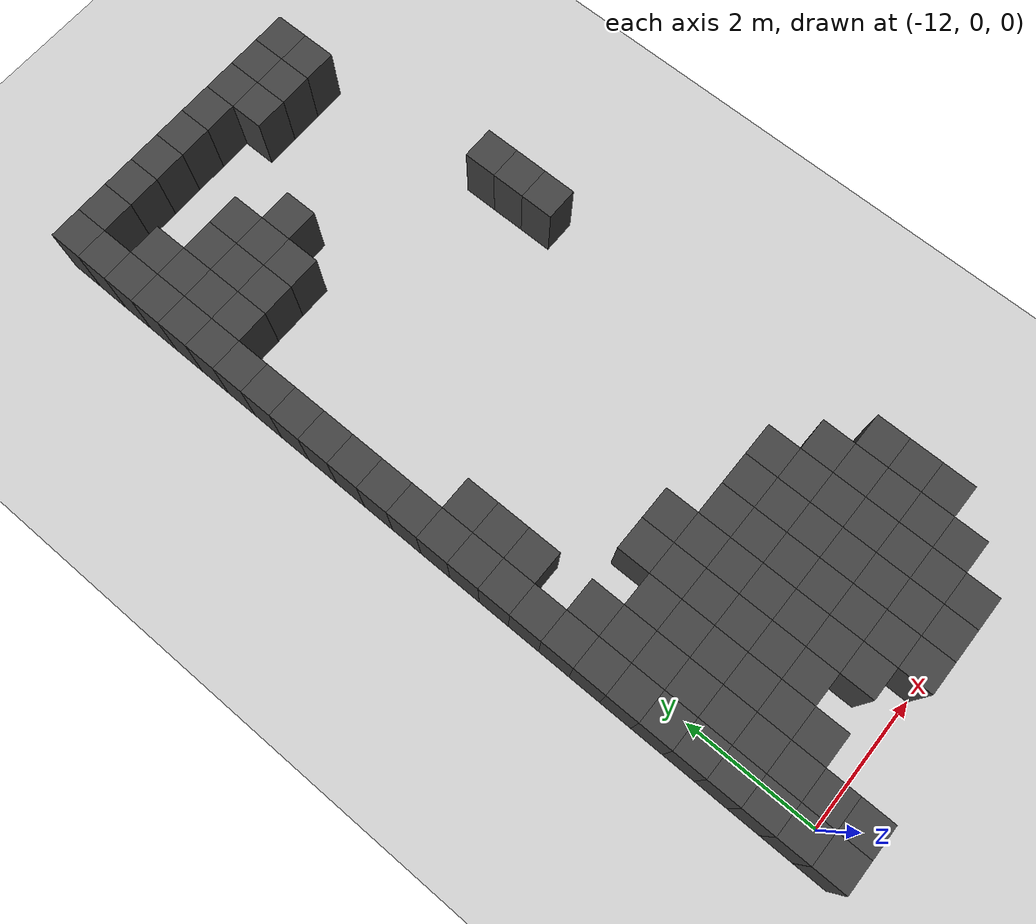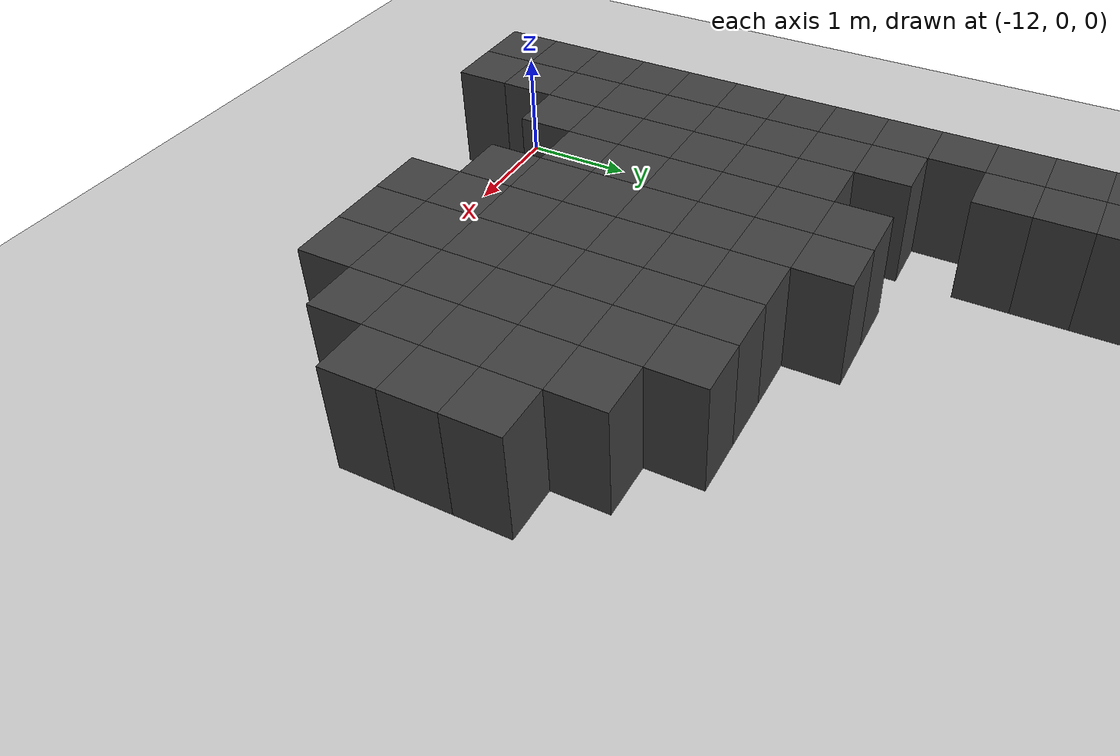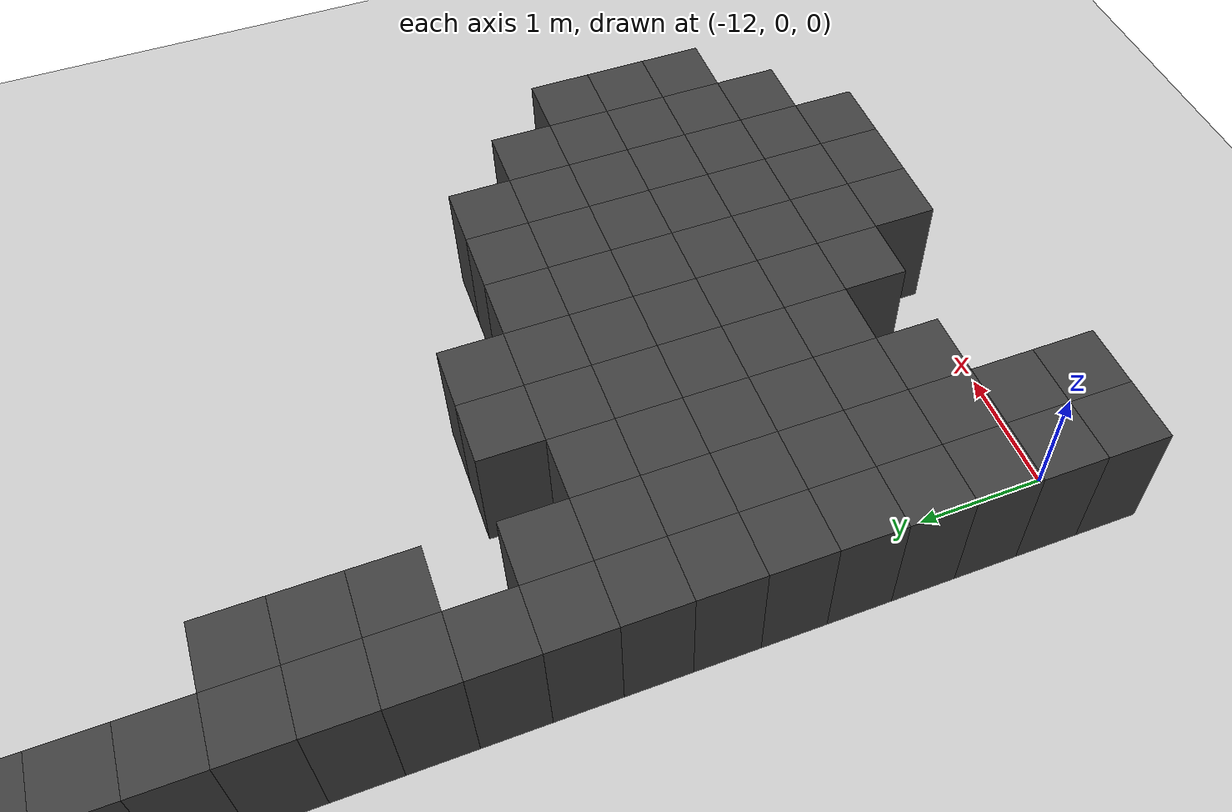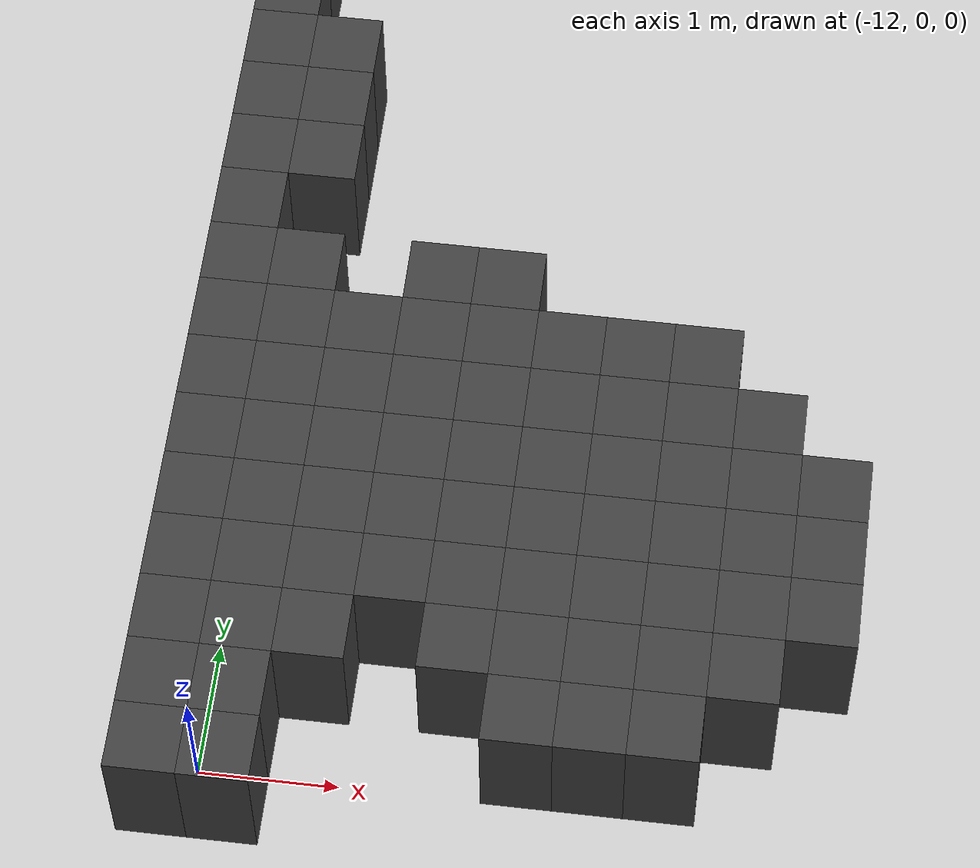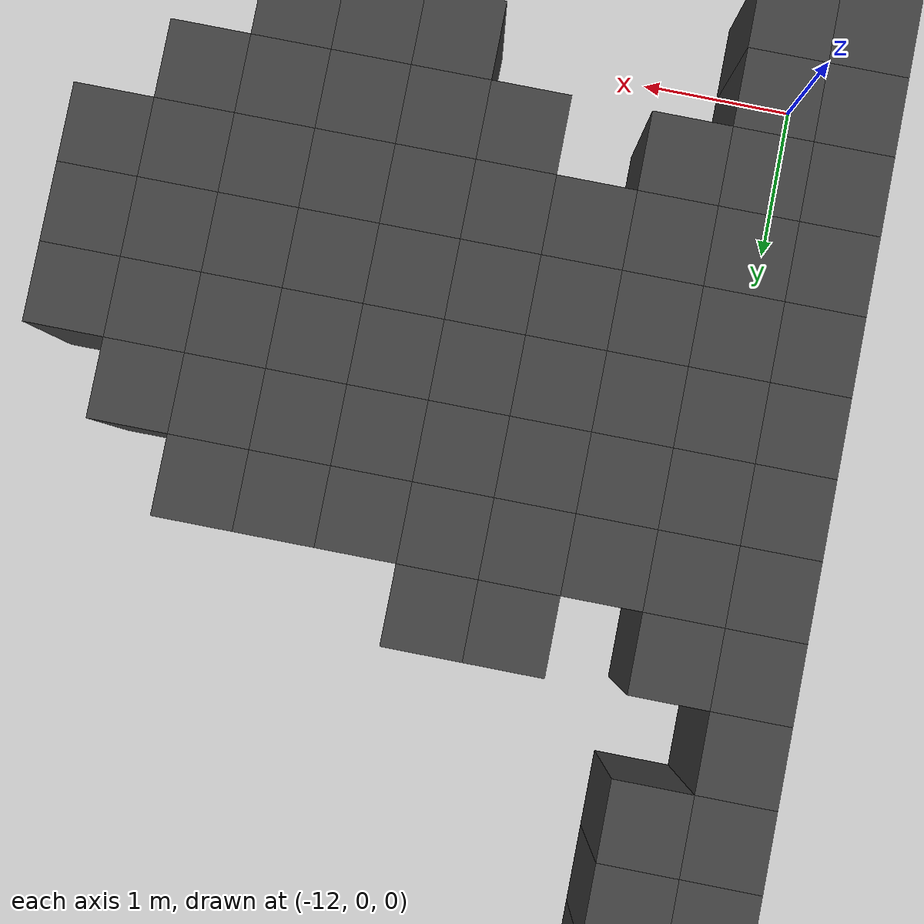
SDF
<sdf version="1.7">
 <world name="map_9405">
  <model name="ground_plane">
   <static>true</static>
   <link name="link">
    <collision name="collision">
     <geometry><plane><normal>0 0 1</normal><size>200 200</size></plane></geometry>
    </collision>
    <visual name="visual">
     <geometry><plane><normal>0 0 1</normal><size>200 200</size></plane></geometry>
     <material><ambient>0.8 0.8 0.8 1</ambient><diffuse>0.8 0.8 0.8 1</diffuse></material>
    </visual>
   </link>
  </model>
  <model name="maze_environment">
   <static>true</static>
   <link name="wall_0">
    <pose>-12.250 12.250 0.500 0 0 0</pose>
    <collision name="col"><geometry><box><size>0.5 0.5 1.0</size></box></geometry></collision>
    <visual name="vis">
     <geometry><box><size>0.5 0.5 1.0</size></box></geometry>
     <material><ambient>0.15 0.15 0.15 1</ambient><diffuse>0.25 0.25 0.25 1</diffuse></material>
    </visual>
   </link>
   <link name="wall_1">
    <pose>-11.750 12.250 0.500 0 0 0</pose>
    <collision name="col"><geometry><box><size>0.5 0.5 1.0</size></box></geometry></collision>
    <visual name="vis">
     <geometry><box><size>0.5 0.5 1.0</size></box></geometry>
     <material><ambient>0.15 0.15 0.15 1</ambient><diffuse>0.25 0.25 0.25 1</diffuse></material>
    </visual>
   </link>
   <link name="wall_2">
    <pose>-11.250 12.250 0.500 0 0 0</pose>
    <collision name="col"><geometry><box><size>0.5 0.5 1.0</size></box></geometry></collision>
    <visual name="vis">
     <geometry><box><size>0.5 0.5 1.0</size></box></geometry>
     <material><ambient>0.15 0.15 0.15 1</ambient><diffuse>0.25 0.25 0.25 1</diffuse></material>
    </visual>
   </link>
   <link name="wall_3">
    <pose>-10.750 12.250 0.500 0 0 0</pose>
    <collision name="col"><geometry><box><size>0.5 0.5 1.0</size></box></geometry></collision>
    <visual name="vis">
     <geometry><box><size>0.5 0.5 1.0</size></box></geometry>
     <material><ambient>0.15 0.15 0.15 1</ambient><diffuse>0.25 0.25 0.25 1</diffuse></material>
    </visual>
   </link>
   <link name="wall_4">
    <pose>-10.250 12.250 0.500 0 0 0</pose>
    <collision name="col"><geometry><box><size>0.5 0.5 1.0</size></box></geometry></collision>
    <visual name="vis">
     <geometry><box><size>0.5 0.5 1.0</size></box></geometry>
     <material><ambient>0.15 0.15 0.15 1</ambient><diffuse>0.25 0.25 0.25 1</diffuse></material>
    </visual>
   </link>
   <link name="wall_5">
    <pose>-9.750 12.250 0.500 0 0 0</pose>
    <collision name="col"><geometry><box><size>0.5 0.5 1.0</size></box></geometry></collision>
    <visual name="vis">
     <geometry><box><size>0.5 0.5 1.0</size></box></geometry>
     <material><ambient>0.15 0.15 0.15 1</ambient><diffuse>0.25 0.25 0.25 1</diffuse></material>
    </visual>
   </link>
   <link name="wall_6">
    <pose>-9.250 12.250 0.500 0 0 0</pose>
    <collision name="col"><geometry><box><size>0.5 0.5 1.0</size></box></geometry></collision>
    <visual name="vis">
     <geometry><box><size>0.5 0.5 1.0</size></box></geometry>
     <material><ambient>0.15 0.15 0.15 1</ambient><diffuse>0.25 0.25 0.25 1</diffuse></material>
    </visual>
   </link>
   <link name="wall_7">
    <pose>-8.750 12.250 0.500 0 0 0</pose>
    <collision name="col"><geometry><box><size>0.5 0.5 1.0</size></box></geometry></collision>
    <visual name="vis">
     <geometry><box><size>0.5 0.5 1.0</size></box></geometry>
     <material><ambient>0.15 0.15 0.15 1</ambient><diffuse>0.25 0.25 0.25 1</diffuse></material>
    </visual>
   </link>
   <link name="wall_8">
    <pose>-8.250 12.250 0.500 0 0 0</pose>
    <collision name="col"><geometry><box><size>0.5 0.5 1.0</size></box></geometry></collision>
    <visual name="vis">
     <geometry><box><size>0.5 0.5 1.0</size></box></geometry>
     <material><ambient>0.15 0.15 0.15 1</ambient><diffuse>0.25 0.25 0.25 1</diffuse></material>
    </visual>
   </link>
   <link name="wall_50">
    <pose>-12.250 11.750 0.500 0 0 0</pose>
    <collision name="col"><geometry><box><size>0.5 0.5 1.0</size></box></geometry></collision>
    <visual name="vis">
     <geometry><box><size>0.5 0.5 1.0</size></box></geometry>
     <material><ambient>0.15 0.15 0.15 1</ambient><diffuse>0.25 0.25 0.25 1</diffuse></material>
    </visual>
   </link>
   <link name="wall_51">
    <pose>-9.250 11.750 0.500 0 0 0</pose>
    <collision name="col"><geometry><box><size>0.5 0.5 1.0</size></box></geometry></collision>
    <visual name="vis">
     <geometry><box><size>0.5 0.5 1.0</size></box></geometry>
     <material><ambient>0.15 0.15 0.15 1</ambient><diffuse>0.25 0.25 0.25 1</diffuse></material>
    </visual>
   </link>
   <link name="wall_52">
    <pose>-8.750 11.750 0.500 0 0 0</pose>
    <collision name="col"><geometry><box><size>0.5 0.5 1.0</size></box></geometry></collision>
    <visual name="vis">
     <geometry><box><size>0.5 0.5 1.0</size></box></geometry>
     <material><ambient>0.15 0.15 0.15 1</ambient><diffuse>0.25 0.25 0.25 1</diffuse></material>
    </visual>
   </link>
   <link name="wall_53">
    <pose>-8.250 11.750 0.500 0 0 0</pose>
    <collision name="col"><geometry><box><size>0.5 0.5 1.0</size></box></geometry></collision>
    <visual name="vis">
     <geometry><box><size>0.5 0.5 1.0</size></box></geometry>
     <material><ambient>0.15 0.15 0.15 1</ambient><diffuse>0.25 0.25 0.25 1</diffuse></material>
    </visual>
   </link>
   <link name="wall_76">
    <pose>-12.250 11.250 0.500 0 0 0</pose>
    <collision name="col"><geometry><box><size>0.5 0.5 1.0</size></box></geometry></collision>
    <visual name="vis">
     <geometry><box><size>0.5 0.5 1.0</size></box></geometry>
     <material><ambient>0.15 0.15 0.15 1</ambient><diffuse>0.25 0.25 0.25 1</diffuse></material>
    </visual>
   </link>
   <link name="wall_77">
    <pose>-11.750 11.250 0.500 0 0 0</pose>
    <collision name="col"><geometry><box><size>0.5 0.5 1.0</size></box></geometry></collision>
    <visual name="vis">
     <geometry><box><size>0.5 0.5 1.0</size></box></geometry>
     <material><ambient>0.15 0.15 0.15 1</ambient><diffuse>0.25 0.25 0.25 1</diffuse></material>
    </visual>
   </link>
   <link name="wall_89">
    <pose>-12.250 10.750 0.500 0 0 0</pose>
    <collision name="col"><geometry><box><size>0.5 0.5 1.0</size></box></geometry></collision>
    <visual name="vis">
     <geometry><box><size>0.5 0.5 1.0</size></box></geometry>
     <material><ambient>0.15 0.15 0.15 1</ambient><diffuse>0.25 0.25 0.25 1</diffuse></material>
    </visual>
   </link>
   <link name="wall_90">
    <pose>-11.750 10.750 0.500 0 0 0</pose>
    <collision name="col"><geometry><box><size>0.5 0.5 1.0</size></box></geometry></collision>
    <visual name="vis">
     <geometry><box><size>0.5 0.5 1.0</size></box></geometry>
     <material><ambient>0.15 0.15 0.15 1</ambient><diffuse>0.25 0.25 0.25 1</diffuse></material>
    </visual>
   </link>
   <link name="wall_91">
    <pose>-11.250 10.750 0.500 0 0 0</pose>
    <collision name="col"><geometry><box><size>0.5 0.5 1.0</size></box></geometry></collision>
    <visual name="vis">
     <geometry><box><size>0.5 0.5 1.0</size></box></geometry>
     <material><ambient>0.15 0.15 0.15 1</ambient><diffuse>0.25 0.25 0.25 1</diffuse></material>
    </visual>
   </link>
   <link name="wall_92">
    <pose>-10.750 10.750 0.500 0 0 0</pose>
    <collision name="col"><geometry><box><size>0.5 0.5 1.0</size></box></geometry></collision>
    <visual name="vis">
     <geometry><box><size>0.5 0.5 1.0</size></box></geometry>
     <material><ambient>0.15 0.15 0.15 1</ambient><diffuse>0.25 0.25 0.25 1</diffuse></material>
    </visual>
   </link>
   <link name="wall_98">
    <pose>-12.250 10.250 0.500 0 0 0</pose>
    <collision name="col"><geometry><box><size>0.5 0.5 1.0</size></box></geometry></collision>
    <visual name="vis">
     <geometry><box><size>0.5 0.5 1.0</size></box></geometry>
     <material><ambient>0.15 0.15 0.15 1</ambient><diffuse>0.25 0.25 0.25 1</diffuse></material>
    </visual>
   </link>
   <link name="wall_99">
    <pose>-11.750 10.250 0.500 0 0 0</pose>
    <collision name="col"><geometry><box><size>0.5 0.5 1.0</size></box></geometry></collision>
    <visual name="vis">
     <geometry><box><size>0.5 0.5 1.0</size></box></geometry>
     <material><ambient>0.15 0.15 0.15 1</ambient><diffuse>0.25 0.25 0.25 1</diffuse></material>
    </visual>
   </link>
   <link name="wall_100">
    <pose>-11.250 10.250 0.500 0 0 0</pose>
    <collision name="col"><geometry><box><size>0.5 0.5 1.0</size></box></geometry></collision>
    <visual name="vis">
     <geometry><box><size>0.5 0.5 1.0</size></box></geometry>
     <material><ambient>0.15 0.15 0.15 1</ambient><diffuse>0.25 0.25 0.25 1</diffuse></material>
    </visual>
   </link>
   <link name="wall_101">
    <pose>-10.750 10.250 0.500 0 0 0</pose>
    <collision name="col"><geometry><box><size>0.5 0.5 1.0</size></box></geometry></collision>
    <visual name="vis">
     <geometry><box><size>0.5 0.5 1.0</size></box></geometry>
     <material><ambient>0.15 0.15 0.15 1</ambient><diffuse>0.25 0.25 0.25 1</diffuse></material>
    </visual>
   </link>
   <link name="wall_102">
    <pose>-10.250 10.250 0.500 0 0 0</pose>
    <collision name="col"><geometry><box><size>0.5 0.5 1.0</size></box></geometry></collision>
    <visual name="vis">
     <geometry><box><size>0.5 0.5 1.0</size></box></geometry>
     <material><ambient>0.15 0.15 0.15 1</ambient><diffuse>0.25 0.25 0.25 1</diffuse></material>
    </visual>
   </link>
   <link name="wall_109">
    <pose>-12.250 9.750 0.500 0 0 0</pose>
    <collision name="col"><geometry><box><size>0.5 0.5 1.0</size></box></geometry></collision>
    <visual name="vis">
     <geometry><box><size>0.5 0.5 1.0</size></box></geometry>
     <material><ambient>0.15 0.15 0.15 1</ambient><diffuse>0.25 0.25 0.25 1</diffuse></material>
    </visual>
   </link>
   <link name="wall_110">
    <pose>-11.750 9.750 0.500 0 0 0</pose>
    <collision name="col"><geometry><box><size>0.5 0.5 1.0</size></box></geometry></collision>
    <visual name="vis">
     <geometry><box><size>0.5 0.5 1.0</size></box></geometry>
     <material><ambient>0.15 0.15 0.15 1</ambient><diffuse>0.25 0.25 0.25 1</diffuse></material>
    </visual>
   </link>
   <link name="wall_111">
    <pose>-11.250 9.750 0.500 0 0 0</pose>
    <collision name="col"><geometry><box><size>0.5 0.5 1.0</size></box></geometry></collision>
    <visual name="vis">
     <geometry><box><size>0.5 0.5 1.0</size></box></geometry>
     <material><ambient>0.15 0.15 0.15 1</ambient><diffuse>0.25 0.25 0.25 1</diffuse></material>
    </visual>
   </link>
   <link name="wall_112">
    <pose>-10.750 9.750 0.500 0 0 0</pose>
    <collision name="col"><geometry><box><size>0.5 0.5 1.0</size></box></geometry></collision>
    <visual name="vis">
     <geometry><box><size>0.5 0.5 1.0</size></box></geometry>
     <material><ambient>0.15 0.15 0.15 1</ambient><diffuse>0.25 0.25 0.25 1</diffuse></material>
    </visual>
   </link>
   <link name="wall_123">
    <pose>-12.250 9.250 0.500 0 0 0</pose>
    <collision name="col"><geometry><box><size>0.5 0.5 1.0</size></box></geometry></collision>
    <visual name="vis">
     <geometry><box><size>0.5 0.5 1.0</size></box></geometry>
     <material><ambient>0.15 0.15 0.15 1</ambient><diffuse>0.25 0.25 0.25 1</diffuse></material>
    </visual>
   </link>
   <link name="wall_138">
    <pose>-12.250 8.750 0.500 0 0 0</pose>
    <collision name="col"><geometry><box><size>0.5 0.5 1.0</size></box></geometry></collision>
    <visual name="vis">
     <geometry><box><size>0.5 0.5 1.0</size></box></geometry>
     <material><ambient>0.15 0.15 0.15 1</ambient><diffuse>0.25 0.25 0.25 1</diffuse></material>
    </visual>
   </link>
   <link name="wall_139">
    <pose>-7.750 8.750 0.500 0 0 0</pose>
    <collision name="col"><geometry><box><size>0.5 0.5 1.0</size></box></geometry></collision>
    <visual name="vis">
     <geometry><box><size>0.5 0.5 1.0</size></box></geometry>
     <material><ambient>0.15 0.15 0.15 1</ambient><diffuse>0.25 0.25 0.25 1</diffuse></material>
    </visual>
   </link>
   <link name="wall_153">
    <pose>-12.250 8.250 0.500 0 0 0</pose>
    <collision name="col"><geometry><box><size>0.5 0.5 1.0</size></box></geometry></collision>
    <visual name="vis">
     <geometry><box><size>0.5 0.5 1.0</size></box></geometry>
     <material><ambient>0.15 0.15 0.15 1</ambient><diffuse>0.25 0.25 0.25 1</diffuse></material>
    </visual>
   </link>
   <link name="wall_154">
    <pose>-7.750 8.250 0.500 0 0 0</pose>
    <collision name="col"><geometry><box><size>0.5 0.5 1.0</size></box></geometry></collision>
    <visual name="vis">
     <geometry><box><size>0.5 0.5 1.0</size></box></geometry>
     <material><ambient>0.15 0.15 0.15 1</ambient><diffuse>0.25 0.25 0.25 1</diffuse></material>
    </visual>
   </link>
   <link name="wall_168">
    <pose>-12.250 7.750 0.500 0 0 0</pose>
    <collision name="col"><geometry><box><size>0.5 0.5 1.0</size></box></geometry></collision>
    <visual name="vis">
     <geometry><box><size>0.5 0.5 1.0</size></box></geometry>
     <material><ambient>0.15 0.15 0.15 1</ambient><diffuse>0.25 0.25 0.25 1</diffuse></material>
    </visual>
   </link>
   <link name="wall_169">
    <pose>-7.750 7.750 0.500 0 0 0</pose>
    <collision name="col"><geometry><box><size>0.5 0.5 1.0</size></box></geometry></collision>
    <visual name="vis">
     <geometry><box><size>0.5 0.5 1.0</size></box></geometry>
     <material><ambient>0.15 0.15 0.15 1</ambient><diffuse>0.25 0.25 0.25 1</diffuse></material>
    </visual>
   </link>
   <link name="wall_182">
    <pose>-12.250 7.250 0.500 0 0 0</pose>
    <collision name="col"><geometry><box><size>0.5 0.5 1.0</size></box></geometry></collision>
    <visual name="vis">
     <geometry><box><size>0.5 0.5 1.0</size></box></geometry>
     <material><ambient>0.15 0.15 0.15 1</ambient><diffuse>0.25 0.25 0.25 1</diffuse></material>
    </visual>
   </link>
   <link name="wall_192">
    <pose>-12.250 6.750 0.500 0 0 0</pose>
    <collision name="col"><geometry><box><size>0.5 0.5 1.0</size></box></geometry></collision>
    <visual name="vis">
     <geometry><box><size>0.5 0.5 1.0</size></box></geometry>
     <material><ambient>0.15 0.15 0.15 1</ambient><diffuse>0.25 0.25 0.25 1</diffuse></material>
    </visual>
   </link>
   <link name="wall_199">
    <pose>-12.250 6.250 0.500 0 0 0</pose>
    <collision name="col"><geometry><box><size>0.5 0.5 1.0</size></box></geometry></collision>
    <visual name="vis">
     <geometry><box><size>0.5 0.5 1.0</size></box></geometry>
     <material><ambient>0.15 0.15 0.15 1</ambient><diffuse>0.25 0.25 0.25 1</diffuse></material>
    </visual>
   </link>
   <link name="wall_203">
    <pose>-12.250 5.750 0.500 0 0 0</pose>
    <collision name="col"><geometry><box><size>0.5 0.5 1.0</size></box></geometry></collision>
    <visual name="vis">
     <geometry><box><size>0.5 0.5 1.0</size></box></geometry>
     <material><ambient>0.15 0.15 0.15 1</ambient><diffuse>0.25 0.25 0.25 1</diffuse></material>
    </visual>
   </link>
   <link name="wall_204">
    <pose>-11.750 5.750 0.500 0 0 0</pose>
    <collision name="col"><geometry><box><size>0.5 0.5 1.0</size></box></geometry></collision>
    <visual name="vis">
     <geometry><box><size>0.5 0.5 1.0</size></box></geometry>
     <material><ambient>0.15 0.15 0.15 1</ambient><diffuse>0.25 0.25 0.25 1</diffuse></material>
    </visual>
   </link>
   <link name="wall_211">
    <pose>-12.250 5.250 0.500 0 0 0</pose>
    <collision name="col"><geometry><box><size>0.5 0.5 1.0</size></box></geometry></collision>
    <visual name="vis">
     <geometry><box><size>0.5 0.5 1.0</size></box></geometry>
     <material><ambient>0.15 0.15 0.15 1</ambient><diffuse>0.25 0.25 0.25 1</diffuse></material>
    </visual>
   </link>
   <link name="wall_212">
    <pose>-11.750 5.250 0.500 0 0 0</pose>
    <collision name="col"><geometry><box><size>0.5 0.5 1.0</size></box></geometry></collision>
    <visual name="vis">
     <geometry><box><size>0.5 0.5 1.0</size></box></geometry>
     <material><ambient>0.15 0.15 0.15 1</ambient><diffuse>0.25 0.25 0.25 1</diffuse></material>
    </visual>
   </link>
   <link name="wall_224">
    <pose>-12.250 4.750 0.500 0 0 0</pose>
    <collision name="col"><geometry><box><size>0.5 0.5 1.0</size></box></geometry></collision>
    <visual name="vis">
     <geometry><box><size>0.5 0.5 1.0</size></box></geometry>
     <material><ambient>0.15 0.15 0.15 1</ambient><diffuse>0.25 0.25 0.25 1</diffuse></material>
    </visual>
   </link>
   <link name="wall_225">
    <pose>-11.750 4.750 0.500 0 0 0</pose>
    <collision name="col"><geometry><box><size>0.5 0.5 1.0</size></box></geometry></collision>
    <visual name="vis">
     <geometry><box><size>0.5 0.5 1.0</size></box></geometry>
     <material><ambient>0.15 0.15 0.15 1</ambient><diffuse>0.25 0.25 0.25 1</diffuse></material>
    </visual>
   </link>
   <link name="wall_241">
    <pose>-12.250 4.250 0.500 0 0 0</pose>
    <collision name="col"><geometry><box><size>0.5 0.5 1.0</size></box></geometry></collision>
    <visual name="vis">
     <geometry><box><size>0.5 0.5 1.0</size></box></geometry>
     <material><ambient>0.15 0.15 0.15 1</ambient><diffuse>0.25 0.25 0.25 1</diffuse></material>
    </visual>
   </link>
   <link name="wall_258">
    <pose>-12.250 3.750 0.500 0 0 0</pose>
    <collision name="col"><geometry><box><size>0.5 0.5 1.0</size></box></geometry></collision>
    <visual name="vis">
     <geometry><box><size>0.5 0.5 1.0</size></box></geometry>
     <material><ambient>0.15 0.15 0.15 1</ambient><diffuse>0.25 0.25 0.25 1</diffuse></material>
    </visual>
   </link>
   <link name="wall_259">
    <pose>-11.750 3.750 0.500 0 0 0</pose>
    <collision name="col"><geometry><box><size>0.5 0.5 1.0</size></box></geometry></collision>
    <visual name="vis">
     <geometry><box><size>0.5 0.5 1.0</size></box></geometry>
     <material><ambient>0.15 0.15 0.15 1</ambient><diffuse>0.25 0.25 0.25 1</diffuse></material>
    </visual>
   </link>
   <link name="wall_260">
    <pose>-10.750 3.750 0.500 0 0 0</pose>
    <collision name="col"><geometry><box><size>0.5 0.5 1.0</size></box></geometry></collision>
    <visual name="vis">
     <geometry><box><size>0.5 0.5 1.0</size></box></geometry>
     <material><ambient>0.15 0.15 0.15 1</ambient><diffuse>0.25 0.25 0.25 1</diffuse></material>
    </visual>
   </link>
   <link name="wall_261">
    <pose>-10.250 3.750 0.500 0 0 0</pose>
    <collision name="col"><geometry><box><size>0.5 0.5 1.0</size></box></geometry></collision>
    <visual name="vis">
     <geometry><box><size>0.5 0.5 1.0</size></box></geometry>
     <material><ambient>0.15 0.15 0.15 1</ambient><diffuse>0.25 0.25 0.25 1</diffuse></material>
    </visual>
   </link>
   <link name="wall_280">
    <pose>-12.250 3.250 0.500 0 0 0</pose>
    <collision name="col"><geometry><box><size>0.5 0.5 1.0</size></box></geometry></collision>
    <visual name="vis">
     <geometry><box><size>0.5 0.5 1.0</size></box></geometry>
     <material><ambient>0.15 0.15 0.15 1</ambient><diffuse>0.25 0.25 0.25 1</diffuse></material>
    </visual>
   </link>
   <link name="wall_281">
    <pose>-11.750 3.250 0.500 0 0 0</pose>
    <collision name="col"><geometry><box><size>0.5 0.5 1.0</size></box></geometry></collision>
    <visual name="vis">
     <geometry><box><size>0.5 0.5 1.0</size></box></geometry>
     <material><ambient>0.15 0.15 0.15 1</ambient><diffuse>0.25 0.25 0.25 1</diffuse></material>
    </visual>
   </link>
   <link name="wall_282">
    <pose>-11.250 3.250 0.500 0 0 0</pose>
    <collision name="col"><geometry><box><size>0.5 0.5 1.0</size></box></geometry></collision>
    <visual name="vis">
     <geometry><box><size>0.5 0.5 1.0</size></box></geometry>
     <material><ambient>0.15 0.15 0.15 1</ambient><diffuse>0.25 0.25 0.25 1</diffuse></material>
    </visual>
   </link>
   <link name="wall_283">
    <pose>-10.750 3.250 0.500 0 0 0</pose>
    <collision name="col"><geometry><box><size>0.5 0.5 1.0</size></box></geometry></collision>
    <visual name="vis">
     <geometry><box><size>0.5 0.5 1.0</size></box></geometry>
     <material><ambient>0.15 0.15 0.15 1</ambient><diffuse>0.25 0.25 0.25 1</diffuse></material>
    </visual>
   </link>
   <link name="wall_284">
    <pose>-10.250 3.250 0.500 0 0 0</pose>
    <collision name="col"><geometry><box><size>0.5 0.5 1.0</size></box></geometry></collision>
    <visual name="vis">
     <geometry><box><size>0.5 0.5 1.0</size></box></geometry>
     <material><ambient>0.15 0.15 0.15 1</ambient><diffuse>0.25 0.25 0.25 1</diffuse></material>
    </visual>
   </link>
   <link name="wall_285">
    <pose>-9.750 3.250 0.500 0 0 0</pose>
    <collision name="col"><geometry><box><size>0.5 0.5 1.0</size></box></geometry></collision>
    <visual name="vis">
     <geometry><box><size>0.5 0.5 1.0</size></box></geometry>
     <material><ambient>0.15 0.15 0.15 1</ambient><diffuse>0.25 0.25 0.25 1</diffuse></material>
    </visual>
   </link>
   <link name="wall_286">
    <pose>-9.250 3.250 0.500 0 0 0</pose>
    <collision name="col"><geometry><box><size>0.5 0.5 1.0</size></box></geometry></collision>
    <visual name="vis">
     <geometry><box><size>0.5 0.5 1.0</size></box></geometry>
     <material><ambient>0.15 0.15 0.15 1</ambient><diffuse>0.25 0.25 0.25 1</diffuse></material>
    </visual>
   </link>
   <link name="wall_287">
    <pose>-8.750 3.250 0.500 0 0 0</pose>
    <collision name="col"><geometry><box><size>0.5 0.5 1.0</size></box></geometry></collision>
    <visual name="vis">
     <geometry><box><size>0.5 0.5 1.0</size></box></geometry>
     <material><ambient>0.15 0.15 0.15 1</ambient><diffuse>0.25 0.25 0.25 1</diffuse></material>
    </visual>
   </link>
   <link name="wall_302">
    <pose>-12.250 2.750 0.500 0 0 0</pose>
    <collision name="col"><geometry><box><size>0.5 0.5 1.0</size></box></geometry></collision>
    <visual name="vis">
     <geometry><box><size>0.5 0.5 1.0</size></box></geometry>
     <material><ambient>0.15 0.15 0.15 1</ambient><diffuse>0.25 0.25 0.25 1</diffuse></material>
    </visual>
   </link>
   <link name="wall_303">
    <pose>-11.750 2.750 0.500 0 0 0</pose>
    <collision name="col"><geometry><box><size>0.5 0.5 1.0</size></box></geometry></collision>
    <visual name="vis">
     <geometry><box><size>0.5 0.5 1.0</size></box></geometry>
     <material><ambient>0.15 0.15 0.15 1</ambient><diffuse>0.25 0.25 0.25 1</diffuse></material>
    </visual>
   </link>
   <link name="wall_304">
    <pose>-11.250 2.750 0.500 0 0 0</pose>
    <collision name="col"><geometry><box><size>0.5 0.5 1.0</size></box></geometry></collision>
    <visual name="vis">
     <geometry><box><size>0.5 0.5 1.0</size></box></geometry>
     <material><ambient>0.15 0.15 0.15 1</ambient><diffuse>0.25 0.25 0.25 1</diffuse></material>
    </visual>
   </link>
   <link name="wall_305">
    <pose>-10.750 2.750 0.500 0 0 0</pose>
    <collision name="col"><geometry><box><size>0.5 0.5 1.0</size></box></geometry></collision>
    <visual name="vis">
     <geometry><box><size>0.5 0.5 1.0</size></box></geometry>
     <material><ambient>0.15 0.15 0.15 1</ambient><diffuse>0.25 0.25 0.25 1</diffuse></material>
    </visual>
   </link>
   <link name="wall_306">
    <pose>-10.250 2.750 0.500 0 0 0</pose>
    <collision name="col"><geometry><box><size>0.5 0.5 1.0</size></box></geometry></collision>
    <visual name="vis">
     <geometry><box><size>0.5 0.5 1.0</size></box></geometry>
     <material><ambient>0.15 0.15 0.15 1</ambient><diffuse>0.25 0.25 0.25 1</diffuse></material>
    </visual>
   </link>
   <link name="wall_307">
    <pose>-9.750 2.750 0.500 0 0 0</pose>
    <collision name="col"><geometry><box><size>0.5 0.5 1.0</size></box></geometry></collision>
    <visual name="vis">
     <geometry><box><size>0.5 0.5 1.0</size></box></geometry>
     <material><ambient>0.15 0.15 0.15 1</ambient><diffuse>0.25 0.25 0.25 1</diffuse></material>
    </visual>
   </link>
   <link name="wall_308">
    <pose>-9.250 2.750 0.500 0 0 0</pose>
    <collision name="col"><geometry><box><size>0.5 0.5 1.0</size></box></geometry></collision>
    <visual name="vis">
     <geometry><box><size>0.5 0.5 1.0</size></box></geometry>
     <material><ambient>0.15 0.15 0.15 1</ambient><diffuse>0.25 0.25 0.25 1</diffuse></material>
    </visual>
   </link>
   <link name="wall_309">
    <pose>-8.750 2.750 0.500 0 0 0</pose>
    <collision name="col"><geometry><box><size>0.5 0.5 1.0</size></box></geometry></collision>
    <visual name="vis">
     <geometry><box><size>0.5 0.5 1.0</size></box></geometry>
     <material><ambient>0.15 0.15 0.15 1</ambient><diffuse>0.25 0.25 0.25 1</diffuse></material>
    </visual>
   </link>
   <link name="wall_310">
    <pose>-8.250 2.750 0.500 0 0 0</pose>
    <collision name="col"><geometry><box><size>0.5 0.5 1.0</size></box></geometry></collision>
    <visual name="vis">
     <geometry><box><size>0.5 0.5 1.0</size></box></geometry>
     <material><ambient>0.15 0.15 0.15 1</ambient><diffuse>0.25 0.25 0.25 1</diffuse></material>
    </visual>
   </link>
   <link name="wall_323">
    <pose>-12.250 2.250 0.500 0 0 0</pose>
    <collision name="col"><geometry><box><size>0.5 0.5 1.0</size></box></geometry></collision>
    <visual name="vis">
     <geometry><box><size>0.5 0.5 1.0</size></box></geometry>
     <material><ambient>0.15 0.15 0.15 1</ambient><diffuse>0.25 0.25 0.25 1</diffuse></material>
    </visual>
   </link>
   <link name="wall_324">
    <pose>-11.750 2.250 0.500 0 0 0</pose>
    <collision name="col"><geometry><box><size>0.5 0.5 1.0</size></box></geometry></collision>
    <visual name="vis">
     <geometry><box><size>0.5 0.5 1.0</size></box></geometry>
     <material><ambient>0.15 0.15 0.15 1</ambient><diffuse>0.25 0.25 0.25 1</diffuse></material>
    </visual>
   </link>
   <link name="wall_325">
    <pose>-11.250 2.250 0.500 0 0 0</pose>
    <collision name="col"><geometry><box><size>0.5 0.5 1.0</size></box></geometry></collision>
    <visual name="vis">
     <geometry><box><size>0.5 0.5 1.0</size></box></geometry>
     <material><ambient>0.15 0.15 0.15 1</ambient><diffuse>0.25 0.25 0.25 1</diffuse></material>
    </visual>
   </link>
   <link name="wall_326">
    <pose>-10.750 2.250 0.500 0 0 0</pose>
    <collision name="col"><geometry><box><size>0.5 0.5 1.0</size></box></geometry></collision>
    <visual name="vis">
     <geometry><box><size>0.5 0.5 1.0</size></box></geometry>
     <material><ambient>0.15 0.15 0.15 1</ambient><diffuse>0.25 0.25 0.25 1</diffuse></material>
    </visual>
   </link>
   <link name="wall_327">
    <pose>-10.250 2.250 0.500 0 0 0</pose>
    <collision name="col"><geometry><box><size>0.5 0.5 1.0</size></box></geometry></collision>
    <visual name="vis">
     <geometry><box><size>0.5 0.5 1.0</size></box></geometry>
     <material><ambient>0.15 0.15 0.15 1</ambient><diffuse>0.25 0.25 0.25 1</diffuse></material>
    </visual>
   </link>
   <link name="wall_328">
    <pose>-9.750 2.250 0.500 0 0 0</pose>
    <collision name="col"><geometry><box><size>0.5 0.5 1.0</size></box></geometry></collision>
    <visual name="vis">
     <geometry><box><size>0.5 0.5 1.0</size></box></geometry>
     <material><ambient>0.15 0.15 0.15 1</ambient><diffuse>0.25 0.25 0.25 1</diffuse></material>
    </visual>
   </link>
   <link name="wall_329">
    <pose>-9.250 2.250 0.500 0 0 0</pose>
    <collision name="col"><geometry><box><size>0.5 0.5 1.0</size></box></geometry></collision>
    <visual name="vis">
     <geometry><box><size>0.5 0.5 1.0</size></box></geometry>
     <material><ambient>0.15 0.15 0.15 1</ambient><diffuse>0.25 0.25 0.25 1</diffuse></material>
    </visual>
   </link>
   <link name="wall_330">
    <pose>-8.750 2.250 0.500 0 0 0</pose>
    <collision name="col"><geometry><box><size>0.5 0.5 1.0</size></box></geometry></collision>
    <visual name="vis">
     <geometry><box><size>0.5 0.5 1.0</size></box></geometry>
     <material><ambient>0.15 0.15 0.15 1</ambient><diffuse>0.25 0.25 0.25 1</diffuse></material>
    </visual>
   </link>
   <link name="wall_331">
    <pose>-8.250 2.250 0.500 0 0 0</pose>
    <collision name="col"><geometry><box><size>0.5 0.5 1.0</size></box></geometry></collision>
    <visual name="vis">
     <geometry><box><size>0.5 0.5 1.0</size></box></geometry>
     <material><ambient>0.15 0.15 0.15 1</ambient><diffuse>0.25 0.25 0.25 1</diffuse></material>
    </visual>
   </link>
   <link name="wall_332">
    <pose>-7.750 2.250 0.500 0 0 0</pose>
    <collision name="col"><geometry><box><size>0.5 0.5 1.0</size></box></geometry></collision>
    <visual name="vis">
     <geometry><box><size>0.5 0.5 1.0</size></box></geometry>
     <material><ambient>0.15 0.15 0.15 1</ambient><diffuse>0.25 0.25 0.25 1</diffuse></material>
    </visual>
   </link>
   <link name="wall_343">
    <pose>-12.250 1.750 0.500 0 0 0</pose>
    <collision name="col"><geometry><box><size>0.5 0.5 1.0</size></box></geometry></collision>
    <visual name="vis">
     <geometry><box><size>0.5 0.5 1.0</size></box></geometry>
     <material><ambient>0.15 0.15 0.15 1</ambient><diffuse>0.25 0.25 0.25 1</diffuse></material>
    </visual>
   </link>
   <link name="wall_344">
    <pose>-11.750 1.750 0.500 0 0 0</pose>
    <collision name="col"><geometry><box><size>0.5 0.5 1.0</size></box></geometry></collision>
    <visual name="vis">
     <geometry><box><size>0.5 0.5 1.0</size></box></geometry>
     <material><ambient>0.15 0.15 0.15 1</ambient><diffuse>0.25 0.25 0.25 1</diffuse></material>
    </visual>
   </link>
   <link name="wall_345">
    <pose>-11.250 1.750 0.500 0 0 0</pose>
    <collision name="col"><geometry><box><size>0.5 0.5 1.0</size></box></geometry></collision>
    <visual name="vis">
     <geometry><box><size>0.5 0.5 1.0</size></box></geometry>
     <material><ambient>0.15 0.15 0.15 1</ambient><diffuse>0.25 0.25 0.25 1</diffuse></material>
    </visual>
   </link>
   <link name="wall_346">
    <pose>-10.750 1.750 0.500 0 0 0</pose>
    <collision name="col"><geometry><box><size>0.5 0.5 1.0</size></box></geometry></collision>
    <visual name="vis">
     <geometry><box><size>0.5 0.5 1.0</size></box></geometry>
     <material><ambient>0.15 0.15 0.15 1</ambient><diffuse>0.25 0.25 0.25 1</diffuse></material>
    </visual>
   </link>
   <link name="wall_347">
    <pose>-10.250 1.750 0.500 0 0 0</pose>
    <collision name="col"><geometry><box><size>0.5 0.5 1.0</size></box></geometry></collision>
    <visual name="vis">
     <geometry><box><size>0.5 0.5 1.0</size></box></geometry>
     <material><ambient>0.15 0.15 0.15 1</ambient><diffuse>0.25 0.25 0.25 1</diffuse></material>
    </visual>
   </link>
   <link name="wall_348">
    <pose>-9.750 1.750 0.500 0 0 0</pose>
    <collision name="col"><geometry><box><size>0.5 0.5 1.0</size></box></geometry></collision>
    <visual name="vis">
     <geometry><box><size>0.5 0.5 1.0</size></box></geometry>
     <material><ambient>0.15 0.15 0.15 1</ambient><diffuse>0.25 0.25 0.25 1</diffuse></material>
    </visual>
   </link>
   <link name="wall_349">
    <pose>-9.250 1.750 0.500 0 0 0</pose>
    <collision name="col"><geometry><box><size>0.5 0.5 1.0</size></box></geometry></collision>
    <visual name="vis">
     <geometry><box><size>0.5 0.5 1.0</size></box></geometry>
     <material><ambient>0.15 0.15 0.15 1</ambient><diffuse>0.25 0.25 0.25 1</diffuse></material>
    </visual>
   </link>
   <link name="wall_350">
    <pose>-8.750 1.750 0.500 0 0 0</pose>
    <collision name="col"><geometry><box><size>0.5 0.5 1.0</size></box></geometry></collision>
    <visual name="vis">
     <geometry><box><size>0.5 0.5 1.0</size></box></geometry>
     <material><ambient>0.15 0.15 0.15 1</ambient><diffuse>0.25 0.25 0.25 1</diffuse></material>
    </visual>
   </link>
   <link name="wall_351">
    <pose>-8.250 1.750 0.500 0 0 0</pose>
    <collision name="col"><geometry><box><size>0.5 0.5 1.0</size></box></geometry></collision>
    <visual name="vis">
     <geometry><box><size>0.5 0.5 1.0</size></box></geometry>
     <material><ambient>0.15 0.15 0.15 1</ambient><diffuse>0.25 0.25 0.25 1</diffuse></material>
    </visual>
   </link>
   <link name="wall_352">
    <pose>-7.750 1.750 0.500 0 0 0</pose>
    <collision name="col"><geometry><box><size>0.5 0.5 1.0</size></box></geometry></collision>
    <visual name="vis">
     <geometry><box><size>0.5 0.5 1.0</size></box></geometry>
     <material><ambient>0.15 0.15 0.15 1</ambient><diffuse>0.25 0.25 0.25 1</diffuse></material>
    </visual>
   </link>
   <link name="wall_364">
    <pose>-12.250 1.250 0.500 0 0 0</pose>
    <collision name="col"><geometry><box><size>0.5 0.5 1.0</size></box></geometry></collision>
    <visual name="vis">
     <geometry><box><size>0.5 0.5 1.0</size></box></geometry>
     <material><ambient>0.15 0.15 0.15 1</ambient><diffuse>0.25 0.25 0.25 1</diffuse></material>
    </visual>
   </link>
   <link name="wall_365">
    <pose>-11.750 1.250 0.500 0 0 0</pose>
    <collision name="col"><geometry><box><size>0.5 0.5 1.0</size></box></geometry></collision>
    <visual name="vis">
     <geometry><box><size>0.5 0.5 1.0</size></box></geometry>
     <material><ambient>0.15 0.15 0.15 1</ambient><diffuse>0.25 0.25 0.25 1</diffuse></material>
    </visual>
   </link>
   <link name="wall_366">
    <pose>-11.250 1.250 0.500 0 0 0</pose>
    <collision name="col"><geometry><box><size>0.5 0.5 1.0</size></box></geometry></collision>
    <visual name="vis">
     <geometry><box><size>0.5 0.5 1.0</size></box></geometry>
     <material><ambient>0.15 0.15 0.15 1</ambient><diffuse>0.25 0.25 0.25 1</diffuse></material>
    </visual>
   </link>
   <link name="wall_367">
    <pose>-10.750 1.250 0.500 0 0 0</pose>
    <collision name="col"><geometry><box><size>0.5 0.5 1.0</size></box></geometry></collision>
    <visual name="vis">
     <geometry><box><size>0.5 0.5 1.0</size></box></geometry>
     <material><ambient>0.15 0.15 0.15 1</ambient><diffuse>0.25 0.25 0.25 1</diffuse></material>
    </visual>
   </link>
   <link name="wall_368">
    <pose>-10.250 1.250 0.500 0 0 0</pose>
    <collision name="col"><geometry><box><size>0.5 0.5 1.0</size></box></geometry></collision>
    <visual name="vis">
     <geometry><box><size>0.5 0.5 1.0</size></box></geometry>
     <material><ambient>0.15 0.15 0.15 1</ambient><diffuse>0.25 0.25 0.25 1</diffuse></material>
    </visual>
   </link>
   <link name="wall_369">
    <pose>-9.750 1.250 0.500 0 0 0</pose>
    <collision name="col"><geometry><box><size>0.5 0.5 1.0</size></box></geometry></collision>
    <visual name="vis">
     <geometry><box><size>0.5 0.5 1.0</size></box></geometry>
     <material><ambient>0.15 0.15 0.15 1</ambient><diffuse>0.25 0.25 0.25 1</diffuse></material>
    </visual>
   </link>
   <link name="wall_370">
    <pose>-9.250 1.250 0.500 0 0 0</pose>
    <collision name="col"><geometry><box><size>0.5 0.5 1.0</size></box></geometry></collision>
    <visual name="vis">
     <geometry><box><size>0.5 0.5 1.0</size></box></geometry>
     <material><ambient>0.15 0.15 0.15 1</ambient><diffuse>0.25 0.25 0.25 1</diffuse></material>
    </visual>
   </link>
   <link name="wall_371">
    <pose>-8.750 1.250 0.500 0 0 0</pose>
    <collision name="col"><geometry><box><size>0.5 0.5 1.0</size></box></geometry></collision>
    <visual name="vis">
     <geometry><box><size>0.5 0.5 1.0</size></box></geometry>
     <material><ambient>0.15 0.15 0.15 1</ambient><diffuse>0.25 0.25 0.25 1</diffuse></material>
    </visual>
   </link>
   <link name="wall_372">
    <pose>-8.250 1.250 0.500 0 0 0</pose>
    <collision name="col"><geometry><box><size>0.5 0.5 1.0</size></box></geometry></collision>
    <visual name="vis">
     <geometry><box><size>0.5 0.5 1.0</size></box></geometry>
     <material><ambient>0.15 0.15 0.15 1</ambient><diffuse>0.25 0.25 0.25 1</diffuse></material>
    </visual>
   </link>
   <link name="wall_373">
    <pose>-7.750 1.250 0.500 0 0 0</pose>
    <collision name="col"><geometry><box><size>0.5 0.5 1.0</size></box></geometry></collision>
    <visual name="vis">
     <geometry><box><size>0.5 0.5 1.0</size></box></geometry>
     <material><ambient>0.15 0.15 0.15 1</ambient><diffuse>0.25 0.25 0.25 1</diffuse></material>
    </visual>
   </link>
   <link name="wall_385">
    <pose>-12.250 0.750 0.500 0 0 0</pose>
    <collision name="col"><geometry><box><size>0.5 0.5 1.0</size></box></geometry></collision>
    <visual name="vis">
     <geometry><box><size>0.5 0.5 1.0</size></box></geometry>
     <material><ambient>0.15 0.15 0.15 1</ambient><diffuse>0.25 0.25 0.25 1</diffuse></material>
    </visual>
   </link>
   <link name="wall_386">
    <pose>-11.750 0.750 0.500 0 0 0</pose>
    <collision name="col"><geometry><box><size>0.5 0.5 1.0</size></box></geometry></collision>
    <visual name="vis">
     <geometry><box><size>0.5 0.5 1.0</size></box></geometry>
     <material><ambient>0.15 0.15 0.15 1</ambient><diffuse>0.25 0.25 0.25 1</diffuse></material>
    </visual>
   </link>
   <link name="wall_387">
    <pose>-11.250 0.750 0.500 0 0 0</pose>
    <collision name="col"><geometry><box><size>0.5 0.5 1.0</size></box></geometry></collision>
    <visual name="vis">
     <geometry><box><size>0.5 0.5 1.0</size></box></geometry>
     <material><ambient>0.15 0.15 0.15 1</ambient><diffuse>0.25 0.25 0.25 1</diffuse></material>
    </visual>
   </link>
   <link name="wall_388">
    <pose>-10.250 0.750 0.500 0 0 0</pose>
    <collision name="col"><geometry><box><size>0.5 0.5 1.0</size></box></geometry></collision>
    <visual name="vis">
     <geometry><box><size>0.5 0.5 1.0</size></box></geometry>
     <material><ambient>0.15 0.15 0.15 1</ambient><diffuse>0.25 0.25 0.25 1</diffuse></material>
    </visual>
   </link>
   <link name="wall_389">
    <pose>-9.750 0.750 0.500 0 0 0</pose>
    <collision name="col"><geometry><box><size>0.5 0.5 1.0</size></box></geometry></collision>
    <visual name="vis">
     <geometry><box><size>0.5 0.5 1.0</size></box></geometry>
     <material><ambient>0.15 0.15 0.15 1</ambient><diffuse>0.25 0.25 0.25 1</diffuse></material>
    </visual>
   </link>
   <link name="wall_390">
    <pose>-9.250 0.750 0.500 0 0 0</pose>
    <collision name="col"><geometry><box><size>0.5 0.5 1.0</size></box></geometry></collision>
    <visual name="vis">
     <geometry><box><size>0.5 0.5 1.0</size></box></geometry>
     <material><ambient>0.15 0.15 0.15 1</ambient><diffuse>0.25 0.25 0.25 1</diffuse></material>
    </visual>
   </link>
   <link name="wall_391">
    <pose>-8.750 0.750 0.500 0 0 0</pose>
    <collision name="col"><geometry><box><size>0.5 0.5 1.0</size></box></geometry></collision>
    <visual name="vis">
     <geometry><box><size>0.5 0.5 1.0</size></box></geometry>
     <material><ambient>0.15 0.15 0.15 1</ambient><diffuse>0.25 0.25 0.25 1</diffuse></material>
    </visual>
   </link>
   <link name="wall_392">
    <pose>-8.250 0.750 0.500 0 0 0</pose>
    <collision name="col"><geometry><box><size>0.5 0.5 1.0</size></box></geometry></collision>
    <visual name="vis">
     <geometry><box><size>0.5 0.5 1.0</size></box></geometry>
     <material><ambient>0.15 0.15 0.15 1</ambient><diffuse>0.25 0.25 0.25 1</diffuse></material>
    </visual>
   </link>
   <link name="wall_405">
    <pose>-12.250 0.250 0.500 0 0 0</pose>
    <collision name="col"><geometry><box><size>0.5 0.5 1.0</size></box></geometry></collision>
    <visual name="vis">
     <geometry><box><size>0.5 0.5 1.0</size></box></geometry>
     <material><ambient>0.15 0.15 0.15 1</ambient><diffuse>0.25 0.25 0.25 1</diffuse></material>
    </visual>
   </link>
   <link name="wall_406">
    <pose>-11.750 0.250 0.500 0 0 0</pose>
    <collision name="col"><geometry><box><size>0.5 0.5 1.0</size></box></geometry></collision>
    <visual name="vis">
     <geometry><box><size>0.5 0.5 1.0</size></box></geometry>
     <material><ambient>0.15 0.15 0.15 1</ambient><diffuse>0.25 0.25 0.25 1</diffuse></material>
    </visual>
   </link>
   <link name="wall_407">
    <pose>-9.750 0.250 0.500 0 0 0</pose>
    <collision name="col"><geometry><box><size>0.5 0.5 1.0</size></box></geometry></collision>
    <visual name="vis">
     <geometry><box><size>0.5 0.5 1.0</size></box></geometry>
     <material><ambient>0.15 0.15 0.15 1</ambient><diffuse>0.25 0.25 0.25 1</diffuse></material>
    </visual>
   </link>
   <link name="wall_408">
    <pose>-9.250 0.250 0.500 0 0 0</pose>
    <collision name="col"><geometry><box><size>0.5 0.5 1.0</size></box></geometry></collision>
    <visual name="vis">
     <geometry><box><size>0.5 0.5 1.0</size></box></geometry>
     <material><ambient>0.15 0.15 0.15 1</ambient><diffuse>0.25 0.25 0.25 1</diffuse></material>
    </visual>
   </link>
   <link name="wall_409">
    <pose>-8.750 0.250 0.500 0 0 0</pose>
    <collision name="col"><geometry><box><size>0.5 0.5 1.0</size></box></geometry></collision>
    <visual name="vis">
     <geometry><box><size>0.5 0.5 1.0</size></box></geometry>
     <material><ambient>0.15 0.15 0.15 1</ambient><diffuse>0.25 0.25 0.25 1</diffuse></material>
    </visual>
   </link>
   <link name="wall_426">
    <pose>-12.250 -0.250 0.500 0 0 0</pose>
    <collision name="col"><geometry><box><size>0.5 0.5 1.0</size></box></geometry></collision>
    <visual name="vis">
     <geometry><box><size>0.5 0.5 1.0</size></box></geometry>
     <material><ambient>0.15 0.15 0.15 1</ambient><diffuse>0.25 0.25 0.25 1</diffuse></material>
    </visual>
   </link>
   <link name="wall_427">
    <pose>-11.750 -0.250 0.500 0 0 0</pose>
    <collision name="col"><geometry><box><size>0.5 0.5 1.0</size></box></geometry></collision>
    <visual name="vis">
     <geometry><box><size>0.5 0.5 1.0</size></box></geometry>
     <material><ambient>0.15 0.15 0.15 1</ambient><diffuse>0.25 0.25 0.25 1</diffuse></material>
    </visual>
   </link>
   <link name="start_zone">
    <pose>-11.750 11.750 0.005 0 0 0</pose>
    <visual name="vis">
     <geometry><box><size>0.45 0.45 0.01</size></box></geometry>
     <material>
      <ambient>0.0 1.0 0.0 1</ambient>
      <diffuse>0.0 1.0 0.0 1</diffuse>
      <emissive>0.00 0.60 0.00 1</emissive>
     </material>
    </visual>
   </link>
  </model>
 </world>
</sdf>
